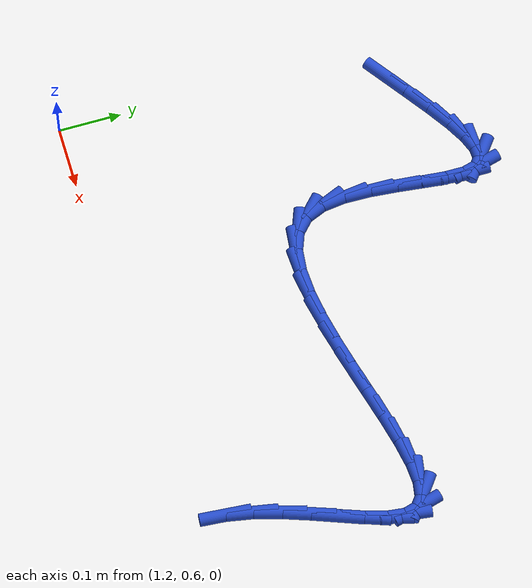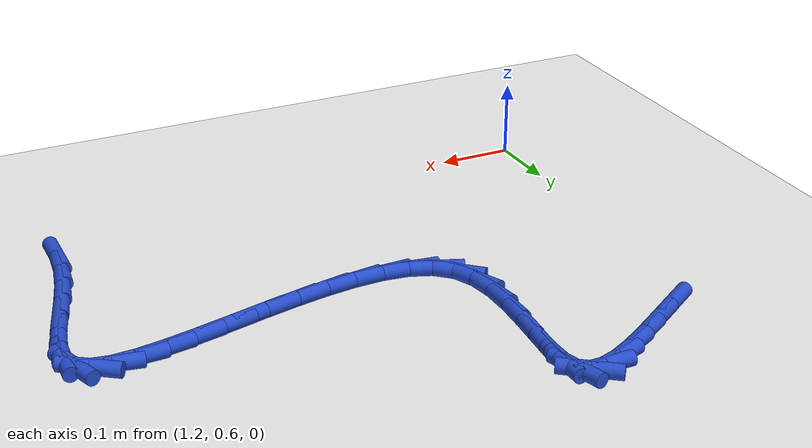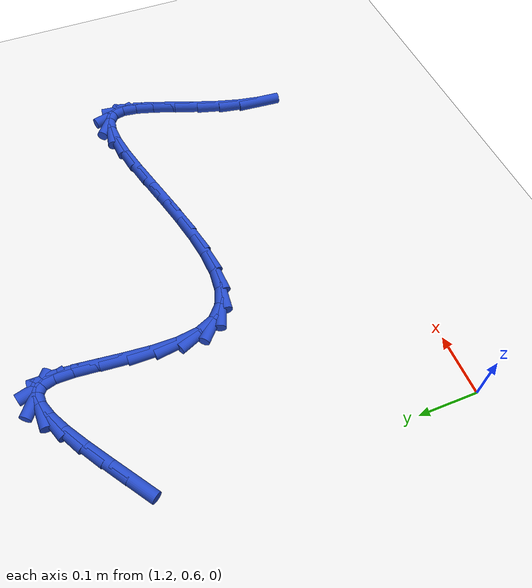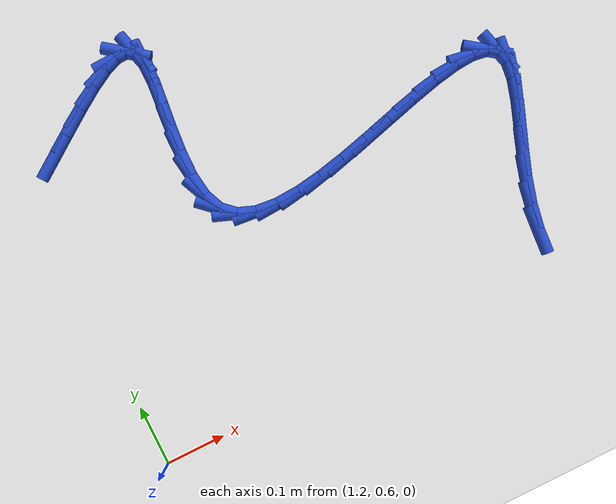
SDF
<sdf version="1.6">
 <world name="default">
  <model name="ground_plane">
   <static>1</static>
   <link name="link">
    <collision name="collision">
     <geometry><plane><normal>0 0 1</normal><size>100 100</size></plane></geometry>
     <surface><friction><ode><mu>100</mu><mu2>50</mu2></ode></friction></surface>
    </collision>
    <visual name="visual">
     <cast_shadows>0</cast_shadows>
     <geometry><plane><normal>0 0 1</normal><size>100 100</size></plane></geometry>
     <material>
      <script><uri>file://media/materials/scripts/gazebo.material</uri><name>Gazebo/WhiteGlow</name></script>
     </material>
    </visual>
   </link>
  </model>
  <model name="line">
   <link name="link_56">
    <pose>1.2582909795788157 1.116938272396839 0.01 0 1.57 0.6103750464510356</pose>
    <collision name="collision">
     <geometry><cylinder><radius>0.01</radius><length>0.08</length></cylinder></geometry>
    </collision>
    <visual name="visual">
     <material>
      <script><name>Gazebo/Blue</name><uri>file://media/materials/scripts/gazebo.material</uri></script>
     </material>
     <geometry><cylinder><radius>0.01</radius><length>0.08</length></cylinder></geometry>
    </visual>
   </link>
   <link name="link_57">
    <pose>1.29660266237697 1.1437364233316785 0.01 0 1.57 0.6030411211472769</pose>
    <collision name="collision">
     <geometry><cylinder><radius>0.01</radius><length>0.08</length></cylinder></geometry>
    </collision>
    <visual name="visual">
     <material>
      <script><name>Gazebo/Blue</name><uri>file://media/materials/scripts/gazebo.material</uri></script>
     </material>
     <geometry><cylinder><radius>0.01</radius><length>0.08</length></cylinder></geometry>
    </visual>
   </link>
   <link name="link_58">
    <pose>1.332316506662911 1.1683293560466765 0.01 0 1.57 0.5720102565742372</pose>
    <collision name="collision">
     <geometry><cylinder><radius>0.01</radius><length>0.08</length></cylinder></geometry>
    </collision>
    <visual name="visual">
     <material>
      <script><name>Gazebo/Blue</name><uri>file://media/materials/scripts/gazebo.material</uri></script>
     </material>
     <geometry><cylinder><radius>0.01</radius><length>0.08</length></cylinder></geometry>
    </visual>
   </link>
   <link name="link_59">
    <pose>1.3647263645948302 1.1891950937380698 0.01 0 1.57 0.5027544762916225</pose>
    <collision name="collision">
     <geometry><cylinder><radius>0.01</radius><length>0.08</length></cylinder></geometry>
    </collision>
    <visual name="visual">
     <material>
      <script><name>Gazebo/Blue</name><uri>file://media/materials/scripts/gazebo.material</uri></script>
     </material>
     <geometry><cylinder><radius>0.01</radius><length>0.08</length></cylinder></geometry>
    </visual>
   </link>
   <link name="link_60">
    <pose>1.3931260883309178 1.2048116596020941 0.01 0 1.57 0.35744204974219007</pose>
    <collision name="collision">
     <geometry><cylinder><radius>0.01</radius><length>0.08</length></cylinder></geometry>
    </collision>
    <visual name="visual">
     <material>
      <script><name>Gazebo/Blue</name><uri>file://media/materials/scripts/gazebo.material</uri></script>
     </material>
     <geometry><cylinder><radius>0.01</radius><length>0.08</length></cylinder></geometry>
    </visual>
   </link>
   <link name="link_61">
    <pose>1.4168095300293657 1.2136570768349864 0.01 0 1.57 0.030235098615312313</pose>
    <collision name="collision">
     <geometry><cylinder><radius>0.01</radius><length>0.08</length></cylinder></geometry>
    </collision>
    <visual name="visual">
     <material>
      <script><name>Gazebo/Blue</name><uri>file://media/materials/scripts/gazebo.material</uri></script>
     </material>
     <geometry><cylinder><radius>0.01</radius><length>0.08</length></cylinder></geometry>
    </visual>
   </link>
   <link name="link_62">
    <pose>1.4350705418483627 1.214209368632982 0.01 0 1.57 -0.6520694940871782</pose>
    <collision name="collision">
     <geometry><cylinder><radius>0.01</radius><length>0.08</length></cylinder></geometry>
    </collision>
    <visual name="visual">
     <material>
      <script><name>Gazebo/Blue</name><uri>file://media/materials/scripts/gazebo.material</uri></script>
     </material>
     <geometry><cylinder><radius>0.01</radius><length>0.08</length></cylinder></geometry>
    </visual>
   </link>
   <link name="link_63">
    <pose>1.4472029759461014 1.2049465581923178 0.01 0 1.57 -1.3096282143864442</pose>
    <collision name="collision">
     <geometry><cylinder><radius>0.01</radius><length>0.08</length></cylinder></geometry>
    </collision>
    <visual name="visual">
     <material>
      <script><name>Gazebo/Blue</name><uri>file://media/materials/scripts/gazebo.material</uri></script>
     </material>
     <geometry><cylinder><radius>0.01</radius><length>0.08</length></cylinder></geometry>
    </visual>
   </link>
   <link name="link_64">
    <pose>1.452648510428562 1.184572107967339 0.01 0 1.57 1.5665216712756018</pose>
    <collision name="collision">
     <geometry><cylinder><radius>0.01</radius><length>0.08</length></cylinder></geometry>
    </collision>
    <visual name="visual">
     <material>
      <script><name>Gazebo/Blue</name><uri>file://media/materials/scripts/gazebo.material</uri></script>
     </material>
     <geometry><cylinder><radius>0.01</radius><length>0.08</length></cylinder></geometry>
    </visual>
   </link>
   <link name="link_65">
    <pose>1.45251926478421 1.1543369564922674 0.01 0 1.57 1.476101667094157</pose>
    <collision name="collision">
     <geometry><cylinder><radius>0.01</radius><length>0.08</length></cylinder></geometry>
    </collision>
    <visual name="visual">
     <material>
      <script><name>Gazebo/Blue</name><uri>file://media/materials/scripts/gazebo.material</uri></script>
     </material>
     <geometry><cylinder><radius>0.01</radius><length>0.08</length></cylinder></geometry>
    </visual>
   </link>
   <link name="link_66">
    <pose>1.4489826835790551 1.1171014465101357 0.01 0 1.57 1.456189754546547</pose>
    <collision name="collision">
     <geometry><cylinder><radius>0.01</radius><length>0.08</length></cylinder></geometry>
    </collision>
    <visual name="visual">
     <material>
      <script><name>Gazebo/Blue</name><uri>file://media/materials/scripts/gazebo.material</uri></script>
     </material>
     <geometry><cylinder><radius>0.01</radius><length>0.08</length></cylinder></geometry>
    </visual>
   </link>
   <link name="link_67">
    <pose>1.4442228214858348 1.0757512517034604 0.01 0 1.57 1.4818079418673855</pose>
    <collision name="collision">
     <geometry><cylinder><radius>0.01</radius><length>0.08</length></cylinder></geometry>
    </collision>
    <visual name="visual">
     <material>
      <script><name>Gazebo/Blue</name><uri>file://media/materials/scripts/gazebo.material</uri></script>
     </material>
     <geometry><cylinder><radius>0.01</radius><length>0.08</length></cylinder></geometry>
    </visual>
   </link>
   <link name="link_68">
    <pose>1.4404237331772851 1.033172045754757 0.01 0 1.57 1.5548099276024168</pose>
    <collision name="collision">
     <geometry><cylinder><radius>0.01</radius><length>0.08</length></cylinder></geometry>
    </collision>
    <visual name="visual">
     <material>
      <script><name>Gazebo/Blue</name><uri>file://media/materials/scripts/gazebo.material</uri></script>
     </material>
     <geometry><cylinder><radius>0.01</radius><length>0.08</length></cylinder></geometry>
    </visual>
   </link>
   <link name="link_69">
    <pose>1.4397694733261428 0.9922495023465414 0.01 0 1.57 -1.4430029857448061</pose>
    <collision name="collision">
     <geometry><cylinder><radius>0.01</radius><length>0.08</length></cylinder></geometry>
    </collision>
    <visual name="visual">
     <material>
      <script><name>Gazebo/Blue</name><uri>file://media/materials/scripts/gazebo.material</uri></script>
     </material>
     <geometry><cylinder><radius>0.01</radius><length>0.08</length></cylinder></geometry>
    </visual>
   </link>
   <link name="link_70">
    <pose>1.4444440966051442 0.9558692951613288 0.01 0 1.57 -1.1723953978482928</pose>
    <collision name="collision">
     <geometry><cylinder><radius>0.01</radius><length>0.08</length></cylinder></geometry>
    </collision>
    <visual name="visual">
     <material>
      <script><name>Gazebo/Blue</name><uri>file://media/materials/scripts/gazebo.material</uri></script>
     </material>
     <geometry><cylinder><radius>0.01</radius><length>0.08</length></cylinder></geometry>
    </visual>
   </link>
   <link name="link_71">
    <pose>1.4566307850846096 0.9269160731723004 0.01 0 1.57 -0.7495480888273142</pose>
    <collision name="collision">
     <geometry><cylinder><radius>0.01</radius><length>0.08</length></cylinder></geometry>
    </collision>
    <visual name="visual">
     <material>
      <script><name>Gazebo/Blue</name><uri>file://media/materials/scripts/gazebo.material</uri></script>
     </material>
     <geometry><cylinder><radius>0.01</radius><length>0.08</length></cylinder></geometry>
    </visual>
   </link>
   <link name="link_72">
    <pose>1.4776932299716616 0.9073121456640446 0.01 0 1.57 -0.3654266519445631</pose>
    <collision name="collision">
     <geometry><cylinder><radius>0.01</radius><length>0.08</length></cylinder></geometry>
    </collision>
    <visual name="visual">
     <material>
      <script><name>Gazebo/Blue</name><uri>file://media/materials/scripts/gazebo.material</uri></script>
     </material>
     <geometry><cylinder><radius>0.01</radius><length>0.08</length></cylinder></geometry>
    </visual>
   </link>
   <link name="link_73">
    <pose>1.5066545299933949 0.8962312311320383 0.01 0 1.57 -0.10873021350679586</pose>
    <collision name="collision">
     <geometry><cylinder><radius>0.01</radius><length>0.08</length></cylinder></geometry>
    </collision>
    <visual name="visual">
     <material>
      <script><name>Gazebo/Blue</name><uri>file://media/materials/scripts/gazebo.material</uri></script>
     </material>
     <geometry><cylinder><radius>0.01</radius><length>0.08</length></cylinder></geometry>
    </visual>
   </link>
   <link name="link_74">
    <pose>1.5421226147960685 0.8923595091595995 0.01 0 1.57 0.0498234583146487</pose>
    <collision name="collision">
     <geometry><cylinder><radius>0.01</radius><length>0.08</length></cylinder></geometry>
    </collision>
    <visual name="visual">
     <material>
      <script><name>Gazebo/Blue</name><uri>file://media/materials/scripts/gazebo.material</uri></script>
     </material>
     <geometry><cylinder><radius>0.01</radius><length>0.08</length></cylinder></geometry>
    </visual>
   </link>
   <link name="link_75">
    <pose>1.582705414025937 0.8943831593300454 0.01 0 1.57 0.14799330359045232</pose>
    <collision name="collision">
     <geometry><cylinder><radius>0.01</radius><length>0.08</length></cylinder></geometry>
    </collision>
    <visual name="visual">
     <material>
      <script><name>Gazebo/Blue</name><uri>file://media/materials/scripts/gazebo.material</uri></script>
     </material>
     <geometry><cylinder><radius>0.01</radius><length>0.08</length></cylinder></geometry>
    </visual>
   </link>
   <link name="link_76">
    <pose>1.6270108573292585 0.900988361226694 0.01 0 1.57 0.20862164706191316</pose>
    <collision name="collision">
     <geometry><cylinder><radius>0.01</radius><length>0.08</length></cylinder></geometry>
    </collision>
    <visual name="visual">
     <material>
      <script><name>Gazebo/Blue</name><uri>file://media/materials/scripts/gazebo.material</uri></script>
     </material>
     <geometry><cylinder><radius>0.01</radius><length>0.08</length></cylinder></geometry>
    </visual>
   </link>
   <link name="link_77">
    <pose>1.673646874352289 0.9108612944328629 0.01 0 1.57 0.2436569862651326</pose>
    <collision name="collision">
     <geometry><cylinder><radius>0.01</radius><length>0.08</length></cylinder></geometry>
    </collision>
    <visual name="visual">
     <material>
      <script><name>Gazebo/Blue</name><uri>file://media/materials/scripts/gazebo.material</uri></script>
     </material>
     <geometry><cylinder><radius>0.01</radius><length>0.08</length></cylinder></geometry>
    </visual>
   </link>
   <link name="link_78">
    <pose>1.7212213947412858 0.9226881385318698 0.01 0 1.57 0.25864675779007196</pose>
    <collision name="collision">
     <geometry><cylinder><radius>0.01</radius><length>0.08</length></cylinder></geometry>
    </collision>
    <visual name="visual">
     <material>
      <script><name>Gazebo/Blue</name><uri>file://media/materials/scripts/gazebo.material</uri></script>
     </material>
     <geometry><cylinder><radius>0.01</radius><length>0.08</length></cylinder></geometry>
    </visual>
   </link>
   <link name="link_79">
    <pose>1.7683423481425051 0.9351550731070322 0.01 0 1.57 0.2548153437148108</pose>
    <collision name="collision">
     <geometry><cylinder><radius>0.01</radius><length>0.08</length></cylinder></geometry>
    </collision>
    <visual name="visual">
     <material>
      <script><name>Gazebo/Blue</name><uri>file://media/materials/scripts/gazebo.material</uri></script>
     </material>
     <geometry><cylinder><radius>0.01</radius><length>0.08</length></cylinder></geometry>
    </visual>
   </link>
   <link name="link_80">
    <pose>1.8136176642022044 0.9469482777416681 0.01 0 1.57 0.22916152231809195</pose>
    <collision name="collision">
     <geometry><cylinder><radius>0.01</radius><length>0.08</length></cylinder></geometry>
    </collision>
    <visual name="visual">
     <material>
      <script><name>Gazebo/Blue</name><uri>file://media/materials/scripts/gazebo.material</uri></script>
     </material>
     <geometry><cylinder><radius>0.01</radius><length>0.08</length></cylinder></geometry>
    </visual>
   </link>
   <link name="link_81">
    <pose>1.8556552725666393 0.9567539320190948 0.01 0 1.57 0.172153810029673</pose>
    <collision name="collision">
     <geometry><cylinder><radius>0.01</radius><length>0.08</length></cylinder></geometry>
    </collision>
    <visual name="visual">
     <material>
      <script><name>Gazebo/Blue</name><uri>file://media/materials/scripts/gazebo.material</uri></script>
     </material>
     <geometry><cylinder><radius>0.01</radius><length>0.08</length></cylinder></geometry>
    </visual>
   </link>
   <link name="link_82">
    <pose>1.893063102882068 0.9632582155226306 0.01 0 1.57 0.060116520988391216</pose>
    <collision name="collision">
     <geometry><cylinder><radius>0.01</radius><length>0.08</length></cylinder></geometry>
    </collision>
    <visual name="visual">
     <material>
      <script><name>Gazebo/Blue</name><uri>file://media/materials/scripts/gazebo.material</uri></script>
     </material>
     <geometry><cylinder><radius>0.01</radius><length>0.08</length></cylinder></geometry>
    </visual>
   </link>
   <link name="link_83">
    <pose>1.9244490847947464 0.9651473078355925 0.01 0 1.57 -0.16695734828224998</pose>
    <collision name="collision">
     <geometry><cylinder><radius>0.01</radius><length>0.08</length></cylinder></geometry>
    </collision>
    <visual name="visual">
     <material>
      <script><name>Gazebo/Blue</name><uri>file://media/materials/scripts/gazebo.material</uri></script>
     </material>
     <geometry><cylinder><radius>0.01</radius><length>0.08</length></cylinder></geometry>
    </visual>
   </link>
   <link name="link_84">
    <pose>1.9484211479509312 0.9611073885412987 0.01 0 1.57 -0.6396157515942449</pose>
    <collision name="collision">
     <geometry><cylinder><radius>0.01</radius><length>0.08</length></cylinder></geometry>
    </collision>
    <visual name="visual">
     <material>
      <script><name>Gazebo/Blue</name><uri>file://media/materials/scripts/gazebo.material</uri></script>
     </material>
     <geometry><cylinder><radius>0.01</radius><length>0.08</length></cylinder></geometry>
    </visual>
   </link>
   <link name="link_85">
    <pose>1.96358722199688 0.9498246372230665 0.01 0 1.57 -1.3073695893782216</pose>
    <collision name="collision">
     <geometry><cylinder><radius>0.01</radius><length>0.08</length></cylinder></geometry>
    </collision>
    <visual name="visual">
     <material>
      <script><name>Gazebo/Blue</name><uri>file://media/materials/scripts/gazebo.material</uri></script>
     </material>
     <geometry><cylinder><radius>0.01</radius><length>0.08</length></cylinder></geometry>
    </visual>
   </link>
   <link name="link_86">
    <pose>1.9688711249243953 0.9302324322519098 0.01 0 1.57 1.4486616623207367</pose>
    <collision name="collision">
     <geometry><cylinder><radius>0.01</radius><length>0.08</length></cylinder></geometry>
    </collision>
    <visual name="visual">
     <material>
      <script><name>Gazebo/Blue</name><uri>file://media/materials/scripts/gazebo.material</uri></script>
     </material>
     <geometry><cylinder><radius>0.01</radius><length>0.08</length></cylinder></geometry>
    </visual>
   </link>
   <link name="link_87">
    <pose>1.965540534804894 0.9030983423967379 0.01 0 1.57 1.2877293433305605</pose>
    <collision name="collision">
     <geometry><cylinder><radius>0.01</radius><length>0.08</length></cylinder></geometry>
    </collision>
    <visual name="visual">
     <material>
      <script><name>Gazebo/Blue</name><uri>file://media/materials/scripts/gazebo.material</uri></script>
     </material>
     <geometry><cylinder><radius>0.01</radius><length>0.08</length></cylinder></geometry>
    </visual>
   </link>
   <link name="link_88">
    <pose>1.9559172843625114 0.8700148663609439 0.01 0 1.57 1.222596683990098</pose>
    <collision name="collision">
     <geometry><cylinder><radius>0.01</radius><length>0.08</length></cylinder></geometry>
    </collision>
    <visual name="visual">
     <material>
      <script><name>Gazebo/Blue</name><uri>file://media/materials/scripts/gazebo.material</uri></script>
     </material>
     <geometry><cylinder><radius>0.01</radius><length>0.08</length></cylinder></geometry>
    </visual>
   </link>
   <link name="link_89">
    <pose>1.9423282570302287 0.83257845528593 0.01 0 1.57 1.2086362627905236</pose>
    <collision name="collision">
     <geometry><cylinder><radius>0.01</radius><length>0.08</length></cylinder></geometry>
    </collision>
    <visual name="visual">
     <material>
      <script><name>Gazebo/Blue</name><uri>file://media/materials/scripts/gazebo.material</uri></script>
     </material>
     <geometry><cylinder><radius>0.01</radius><length>0.08</length></cylinder></geometry>
    </visual>
   </link>
   <link name="link_90">
    <pose>1.9271003362410277 0.7923855603131001 0.01 0 1.57 1.2326916335739546</pose>
    <collision name="collision">
     <geometry><cylinder><radius>0.01</radius><length>0.08</length></cylinder></geometry>
    </collision>
    <visual name="visual">
     <material>
      <script><name>Gazebo/Blue</name><uri>file://media/materials/scripts/gazebo.material</uri></script>
     </material>
     <geometry><cylinder><radius>0.01</radius><length>0.08</length></cylinder></geometry>
    </visual>
   </link>
   <link name="link_91">
    <pose>1.9125604054278904 0.751032632583857 0.01 0 1.57 1.2957653760633399</pose>
    <collision name="collision">
     <geometry><cylinder><radius>0.01</radius><length>0.08</length></cylinder></geometry>
    </collision>
    <visual name="visual">
     <material>
      <script><name>Gazebo/Blue</name><uri>file://media/materials/scripts/gazebo.material</uri></script>
     </material>
     <geometry><cylinder><radius>0.01</radius><length>0.08</length></cylinder></geometry>
    </visual>
   </link>
   <link name="link_92">
    <pose>1.9010097819052307 0.7100993970133687 0.01 0 1.57 1.3887248502496463</pose>
    <collision name="collision">
     <geometry><cylinder><radius>0.01</radius><length>0.08</length></cylinder></geometry>
    </collision>
    <visual name="visual">
     <material>
      <script><name>Gazebo/Blue</name><uri>file://media/materials/scripts/gazebo.material</uri></script>
     </material>
     <geometry><cylinder><radius>0.01</radius><length>0.08</length></cylinder></geometry>
    </visual>
   </link>
   <link name="link_93">
    <pose>1.8937172963205382 0.6704900905450881 0.01 0 1.57 1.4892104870756906</pose>
    <collision name="collision">
     <geometry><cylinder><radius>0.01</radius><length>0.08</length></cylinder></geometry>
    </collision>
    <visual name="visual">
     <material>
      <script><name>Gazebo/Blue</name><uri>file://media/materials/scripts/gazebo.material</uri></script>
     </material>
     <geometry><cylinder><radius>0.01</radius><length>0.08</length></cylinder></geometry>
    </visual>
   </link>
  </model>
 </world>
</sdf>
